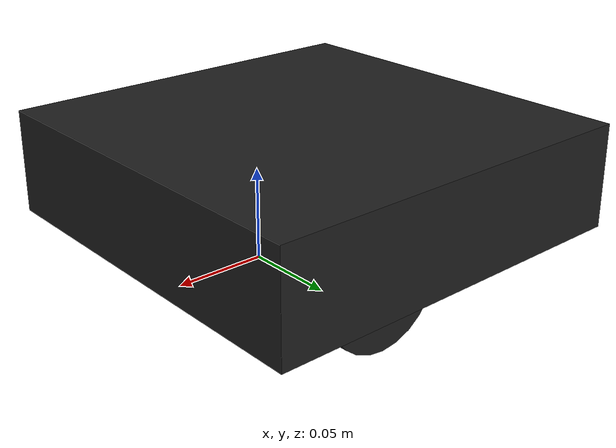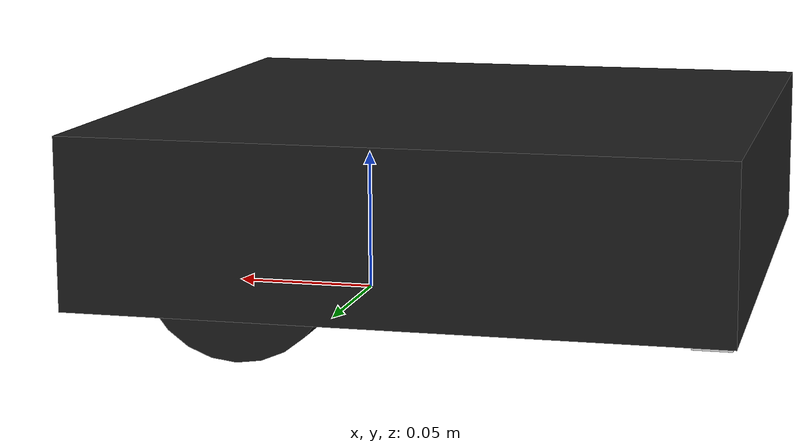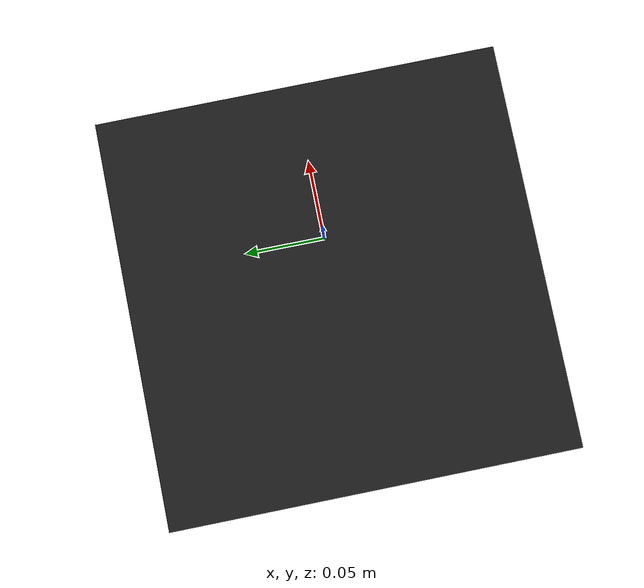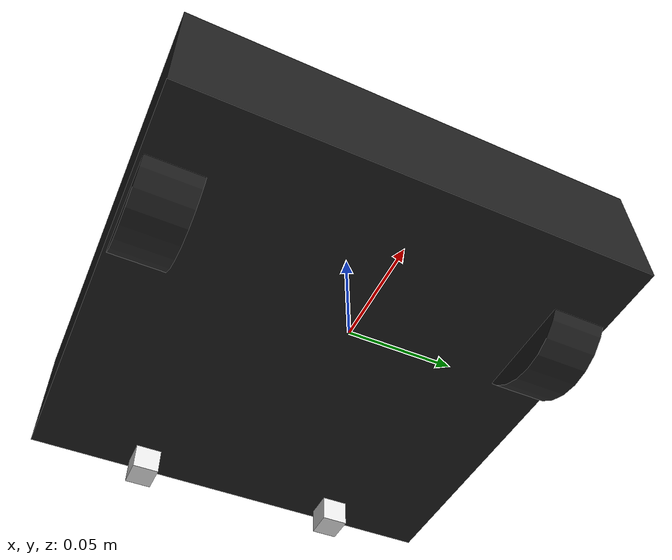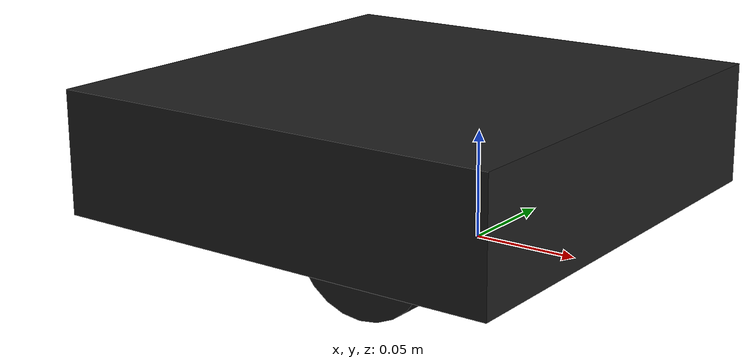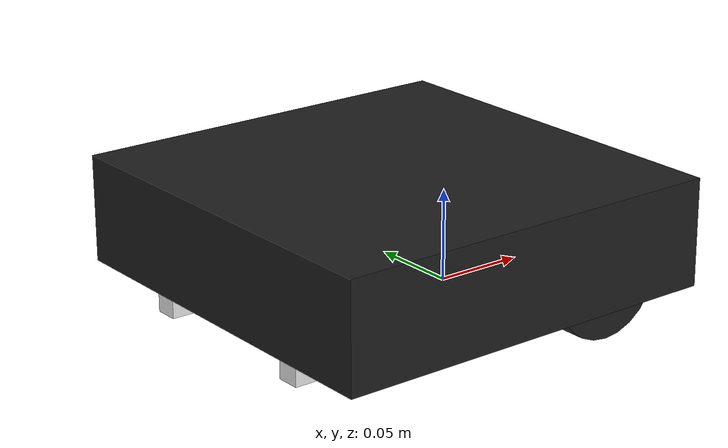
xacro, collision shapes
<?xml version="1.0" ?>
<robot name="rrl_platform" xmlns:xacro="http://ros.org/wiki/xacro">
  <xacro:include filename="$(find rrl_platform_description)/urdf/common_properties.xacro"/>
  <xacro:include filename="$(find rrl_platform_description)/urdf/rrl_platform.gazebo.xacro"/>

  <link name="base_footprint"/>

  <joint name="base_joint" type="fixed">
    <parent link="base_footprint"/>
    <child link="base_link" />
    <origin xyz="0 0 0.0122" rpy="0 0 0"/>
  </joint>

  <link name="base_link">
    <visual>
      <origin xyz="-0.035 0 0.0" rpy="0 0 0"/>
      <geometry>
        <mesh filename="package://rrl_platform_description/meshes/bases/rrl_platform_mesh.stl" scale="0.001 0.001 0.001"/>
      </geometry>
      <material name="light_black"/>
    </visual>

    <collision>
      <origin xyz="-0.035 0 0.02901" rpy="0 0 0"/>
      <geometry>
        <box size="0.220 0.220 0.05802"/>
      </geometry>
    </collision>

    <inertial>
      <origin xyz="0 0 0" rpy="0 0 0"/>
	  <mass value="0.881e+00"/>
	  <inertia ixx="3.0e-03" ixy="0" ixz="0"
			   iyy="3.0e-03" iyz="0"
			   izz="6.0e-03" />
    </inertial>
  </link>

  <joint name="wheel_left_joint" type="continuous">
    <parent link="base_link"/>
    <child link="wheel_left_link"/>
    <origin xyz="0.015 -0.09975 0.0188" rpy="-1.57 0 0"/>
    <axis xyz="0 0 1"/>
  </joint>

  <link name="wheel_left_link">
    <visual>
      <origin xyz="0 0 -0.0085" rpy="0 1.57 0"/>
      <geometry>
        <mesh filename="package://rrl_platform_description/meshes/wheels/wheel_mesh.stl" scale="0.001 0.001 0.001"/>
      </geometry>
      <material name="dark"/>
    </visual>

    <collision>
      <origin xyz="0 0 0.0045" rpy="0 0 0"/>
      <geometry>
        <cylinder length="0.026" radius="0.0325"/>
      </geometry>
    </collision>

    <inertial>
      <origin xyz="0 0 0" />
	  <mass value="3.3e-02" />
      <inertia ixx="1e-05" ixy="0.0" ixz="0.0"
               iyy="1e-05" iyz="0.0"
               izz="1e-05" />
	  </inertial>
  </link>

  <joint name="wheel_right_joint" type="continuous">
    <parent link="base_link"/>
    <child link="wheel_right_link"/>
    <origin xyz="0.015 0.09975 0.0188" rpy="-1.57 0 0"/>
    <axis xyz="0 0 1"/>
  </joint>

  <link name="wheel_right_link">
	<visual>
	  <origin xyz="0 0 0.0085" rpy="0 -1.57 0"/>
	  <geometry>
		<mesh filename="package://rrl_platform_description/meshes/wheels/wheel_mesh.stl" scale="0.001 0.001 0.001"/>
	  </geometry>
	  <material name="dark"/>
	</visual>

	<collision>
	  <origin xyz="0 0 -0.0045" rpy="0 0 0"/>
	  <geometry>
		<cylinder length="0.026" radius="0.0325"/>
	  </geometry>
	</collision>

	<inertial>
	  <origin xyz="0 0 0" />
	  <mass value="3.3e-02" />
      <inertia ixx="1e-05" ixy="0.0" ixz="0.0"
               iyy="1e-05" iyz="0.0"
               izz="1e-05" />
	  </inertial>
  </link>

  <joint name="caster_back_right_joint" type="fixed">
	<parent link="base_link"/>
	<child link="caster_back_right_link"/>
	<origin xyz="-0.133 0.053 -0.0075" rpy="-1.57 0 0"/>
  </joint>

  <link name="caster_back_right_link">
	<visual>
	  <origin xyz="0 0 0" rpy="0 0 0"/>
	  <geometry>
		<mesh filename="package://rrl_platform_description/meshes/wheels/caster_ball_mesh.stl" scale="0.001 0.001 0.001"/>
	  </geometry>
	  <material name="white"/>
	</visual>
	<collision>
	  <origin xyz="0.000575 0 0" rpy="0 0 0"/>
	  <geometry>
		<box size="0.01385 0.013 0.013"/>
	  </geometry>
	</collision>

	<inertial>
	  <origin xyz="0 0 0" />
	  <mass value="8.37e-03" />
      <inertia ixx="1e-03" ixy="0.0" ixz="0.0"
               iyy="1e-03" iyz="0.0"
               izz="1e-03" />
	  </inertial>
  </link>

  <joint name="caster_back_left_joint" type="fixed">
	<parent link="base_link"/>
	<child link="caster_back_left_link"/>
	<origin xyz="-0.133 -0.053 -0.0075" rpy="-1.57 0 0"/>
  </joint>

  <link name="caster_back_left_link">
	<visual>
	  <origin xyz="0 0 0" rpy="0 0 0"/>
	  <geometry>
		<mesh filename="package://rrl_platform_description/meshes/wheels/caster_ball_mesh.stl" scale="0.001 0.001 0.001"/>
	  </geometry>
	  <material name="white"/>
	</visual>
	<collision>
	  <origin xyz="0.000575 0 0" rpy="0 0 0"/>
	  <geometry>
		<box size="0.01385 0.013 0.013"/>
	  </geometry>
	</collision>

	<inertial>
	  <origin xyz="0 0 0" />
	  <mass value="8.37e-03" />
      <inertia ixx="1e-03" ixy="0.0" ixz="0.0"
               iyy="1e-03" iyz="0.0"
               izz="1e-03" />
	  </inertial>
  </link>

  <joint name="imu_joint" type="fixed">
	<parent link="base_link"/>
	<child link="imu_link"/>
	<origin xyz="0.0 0 0.020" rpy="0 0 0"/>
  </joint>

  <link name="imu_link"/>

  <!--              iyy="0.001" iyz="0.0" -->

    <!-- This inertial field needs doesn't contain reliable data!! -->

</robot>
